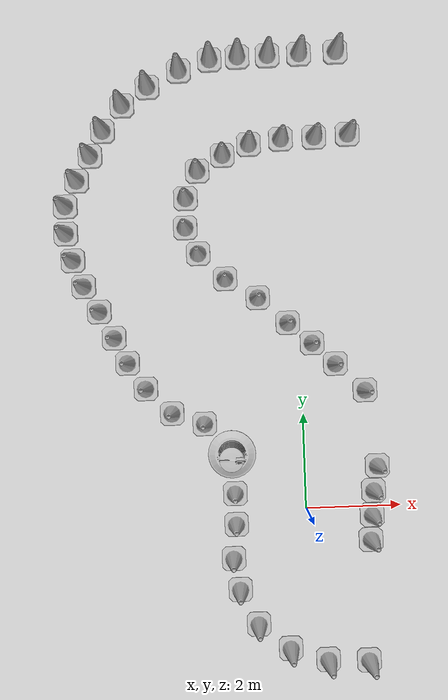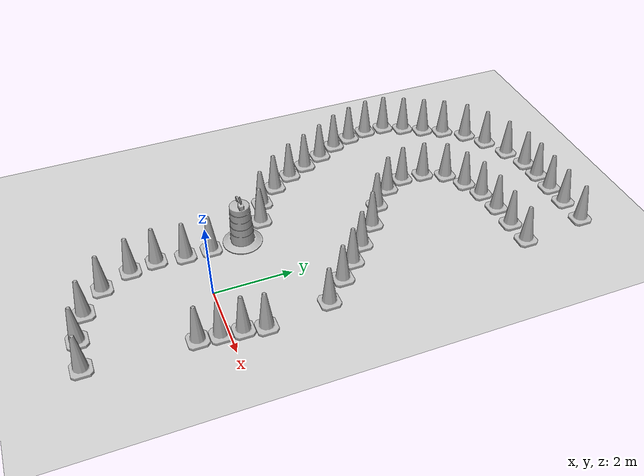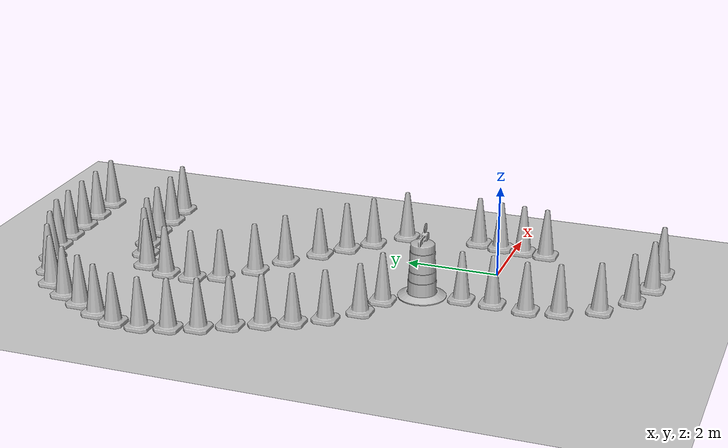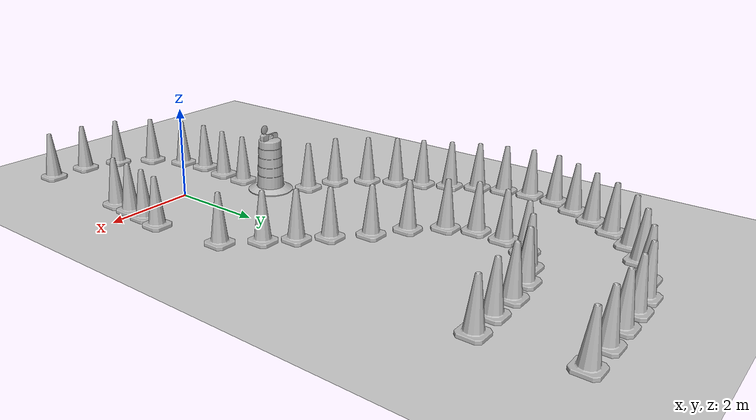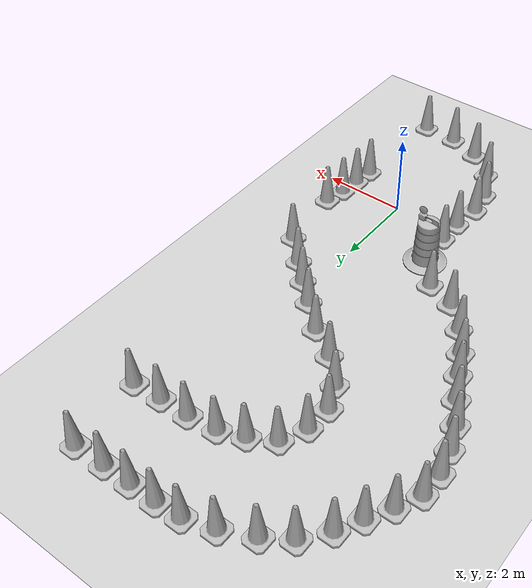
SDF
<sdf version="1.7">
 <world name="default">
  <model name="ground_plane">
   <static>1</static>
   <link name="link">
    <collision name="collision">
     <geometry><plane><normal>0 0 1</normal><size>100 100</size></plane></geometry>
     <surface><friction><ode><mu>100</mu><mu2>50</mu2></ode></friction></surface>
    </collision>
    <visual name="visual">
     <cast_shadows>0</cast_shadows>
     <geometry><plane><normal>0 0 1</normal><size>100 100</size></plane></geometry>
     <material>
      <script><uri>file://media/materials/scripts/gazebo.material</uri><name>Gazebo/Grey</name></script>
     </material>
    </visual>
   </link>
  </model>
  <model name="Construction Cone">
   <link name="link">
    <collision name="collision">
     <geometry>
      <mesh><scale>10 10 10</scale><uri>model://construction_cone/meshes/construction_cone.dae</uri></mesh>
     </geometry>
    </collision>
    <visual name="visual">
     <geometry>
      <mesh><scale>10 10 10</scale><uri>model://construction_cone/meshes/construction_cone.dae</uri></mesh>
     </geometry>
    </visual>
    <inertial>
     <inertia><ixx>1</ixx><ixy>0</ixy><ixz>0</ixz><iyy>1</iyy><iyz>0</iyz><izz>1</izz></inertia>
     <mass>1</mass>
    </inertial>
   </link>
   <pose>-1.50858 0.362206 -0 0 -1e-06 0</pose>
  </model>
  <model name="Construction Cone_0">
   <link name="link">
    <collision name="collision">
     <geometry>
      <mesh><scale>10 10 10</scale><uri>model://construction_cone/meshes/construction_cone.dae</uri></mesh>
     </geometry>
    </collision>
    <visual name="visual">
     <geometry>
      <mesh><scale>10 10 10</scale><uri>model://construction_cone/meshes/construction_cone.dae</uri></mesh>
     </geometry>
    </visual>
    <inertial>
     <inertia><ixx>1</ixx><ixy>0</ixy><ixz>0</ixz><iyy>1</iyy><iyz>0</iyz><izz>1</izz></inertia>
     <mass>1</mass>
    </inertial>
   </link>
   <pose>1.43615 0.328222 -1e-06 3e-06 -1e-06 0</pose>
  </model>
  <model name="Construction Cone_1">
   <link name="link">
    <collision name="collision">
     <geometry>
      <mesh><scale>10 10 10</scale><uri>model://construction_cone/meshes/construction_cone.dae</uri></mesh>
     </geometry>
    </collision>
    <visual name="visual">
     <geometry>
      <mesh><scale>10 10 10</scale><uri>model://construction_cone/meshes/construction_cone.dae</uri></mesh>
     </geometry>
    </visual>
    <inertial>
     <inertia><ixx>1</ixx><ixy>0</ixy><ixz>0</ixz><iyy>1</iyy><iyz>0</iyz><izz>1</izz></inertia>
     <mass>1</mass>
    </inertial>
   </link>
   <pose>-1.58642 -1.01914 -9e-06 -1e-06 -0 -0</pose>
  </model>
  <model name="Construction Cone_2">
   <link name="link">
    <collision name="collision">
     <geometry>
      <mesh><scale>10 10 10</scale><uri>model://construction_cone/meshes/construction_cone.dae</uri></mesh>
     </geometry>
    </collision>
    <visual name="visual">
     <geometry>
      <mesh><scale>10 10 10</scale><uri>model://construction_cone/meshes/construction_cone.dae</uri></mesh>
     </geometry>
    </visual>
    <inertial>
     <inertia><ixx>1</ixx><ixy>0</ixy><ixz>0</ixz><iyy>1</iyy><iyz>0</iyz><izz>1</izz></inertia>
     <mass>1</mass>
    </inertial>
   </link>
   <pose>1.34504 -0.71691 -0 0 -0 0</pose>
  </model>
  <model name="Construction Cone_3">
   <link name="link">
    <collision name="collision">
     <geometry>
      <mesh><scale>10 10 10</scale><uri>model://construction_cone/meshes/construction_cone.dae</uri></mesh>
     </geometry>
    </collision>
    <visual name="visual">
     <geometry>
      <mesh><scale>10 10 10</scale><uri>model://construction_cone/meshes/construction_cone.dae</uri></mesh>
     </geometry>
    </visual>
    <inertial>
     <inertia><ixx>1</ixx><ixy>0</ixy><ixz>0</ixz><iyy>1</iyy><iyz>0</iyz><izz>1</izz></inertia>
     <mass>1</mass>
    </inertial>
   </link>
   <pose>-1.10311 -2.43295 -3e-06 -3e-06 -1e-06 -0</pose>
  </model>
  <model name="Construction Cone_4">
   <link name="link">
    <collision name="collision">
     <geometry>
      <mesh><scale>10 10 10</scale><uri>model://construction_cone/meshes/construction_cone.dae</uri></mesh>
     </geometry>
    </collision>
    <visual name="visual">
     <geometry>
      <mesh><scale>10 10 10</scale><uri>model://construction_cone/meshes/construction_cone.dae</uri></mesh>
     </geometry>
    </visual>
    <inertial>
     <inertia><ixx>1</ixx><ixy>0</ixy><ixz>0</ixz><iyy>1</iyy><iyz>0</iyz><izz>1</izz></inertia>
     <mass>1</mass>
    </inertial>
   </link>
   <pose>0.349808 -3.23868 -6e-06 -4e-06 0 0</pose>
  </model>
  <model name="Construction Cone_8">
   <link name="link">
    <collision name="collision">
     <geometry>
      <mesh><scale>10 10 10</scale><uri>model://construction_cone/meshes/construction_cone.dae</uri></mesh>
     </geometry>
    </collision>
    <visual name="visual">
     <geometry>
      <mesh><scale>10 10 10</scale><uri>model://construction_cone/meshes/construction_cone.dae</uri></mesh>
     </geometry>
    </visual>
    <inertial>
     <inertia><ixx>1</ixx><ixy>0</ixy><ixz>0</ixz><iyy>1</iyy><iyz>0</iyz><izz>1</izz></inertia>
     <mass>1</mass>
    </inertial>
   </link>
   <pose>-0.439786 -2.97166 -0 0 -0 0</pose>
  </model>
  <model name="Construction Cone_10">
   <link name="link">
    <collision name="collision">
     <geometry>
      <mesh><scale>10 10 10</scale><uri>model://construction_cone/meshes/construction_cone.dae</uri></mesh>
     </geometry>
    </collision>
    <visual name="visual">
     <geometry>
      <mesh><scale>10 10 10</scale><uri>model://construction_cone/meshes/construction_cone.dae</uri></mesh>
     </geometry>
    </visual>
    <inertial>
     <inertia><ixx>1</ixx><ixy>0</ixy><ixz>0</ixz><iyy>1</iyy><iyz>0</iyz><izz>1</izz></inertia>
     <mass>1</mass>
    </inertial>
   </link>
   <pose>1.21753 -3.28194 -0 0 -0 0</pose>
  </model>
  <model name="Construction Cone_20">
   <link name="link">
    <collision name="collision">
     <geometry>
      <mesh><scale>10 10 10</scale><uri>model://construction_cone/meshes/construction_cone.dae</uri></mesh>
     </geometry>
    </collision>
    <visual name="visual">
     <geometry>
      <mesh><scale>10 10 10</scale><uri>model://construction_cone/meshes/construction_cone.dae</uri></mesh>
     </geometry>
    </visual>
    <inertial>
     <inertia><ixx>1</ixx><ixy>0</ixy><ixz>0</ixz><iyy>1</iyy><iyz>0</iyz><izz>1</izz></inertia>
     <mass>1</mass>
    </inertial>
   </link>
   <pose>-1.46811 -1.68302 -9e-06 -5e-06 -0 -0</pose>
  </model>
  <model name="Construction Cone_21">
   <link name="link">
    <collision name="collision">
     <geometry>
      <mesh><scale>10 10 10</scale><uri>model://construction_cone/meshes/construction_cone.dae</uri></mesh>
     </geometry>
    </collision>
    <visual name="visual">
     <geometry>
      <mesh><scale>10 10 10</scale><uri>model://construction_cone/meshes/construction_cone.dae</uri></mesh>
     </geometry>
    </visual>
    <inertial>
     <inertia><ixx>1</ixx><ixy>0</ixy><ixz>0</ixz><iyy>1</iyy><iyz>0</iyz><izz>1</izz></inertia>
     <mass>1</mass>
    </inertial>
   </link>
   <pose>-1.50445 -0.294541 -9e-06 -1e-06 -0 -0</pose>
  </model>
  <model name="Construction Cone_31">
   <link name="link">
    <collision name="collision">
     <geometry>
      <mesh><scale>10 10 10</scale><uri>model://construction_cone/meshes/construction_cone.dae</uri></mesh>
     </geometry>
    </collision>
    <visual name="visual">
     <geometry>
      <mesh><scale>10 10 10</scale><uri>model://construction_cone/meshes/construction_cone.dae</uri></mesh>
     </geometry>
    </visual>
    <inertial>
     <inertia><ixx>1</ixx><ixy>0</ixy><ixz>0</ixz><iyy>1</iyy><iyz>0</iyz><izz>1</izz></inertia>
     <mass>1</mass>
    </inertial>
   </link>
   <pose>1.38743 -0.192845 -0 0 -0 0</pose>
  </model>
  <model name="Construction Cone_32">
   <link name="link">
    <collision name="collision">
     <geometry>
      <mesh><scale>10 10 10</scale><uri>model://construction_cone/meshes/construction_cone.dae</uri></mesh>
     </geometry>
    </collision>
    <visual name="visual">
     <geometry>
      <mesh><scale>10 10 10</scale><uri>model://construction_cone/meshes/construction_cone.dae</uri></mesh>
     </geometry>
    </visual>
    <inertial>
     <inertia><ixx>1</ixx><ixy>0</ixy><ixz>0</ixz><iyy>1</iyy><iyz>0</iyz><izz>1</izz></inertia>
     <mass>1</mass>
    </inertial>
   </link>
   <pose>1.5335 0.849439 -0 0 -0 0</pose>
  </model>
  <model name="Construction Cone_54">
   <link name="link">
    <collision name="collision">
     <geometry>
      <mesh><scale>10 10 10</scale><uri>model://construction_cone/meshes/construction_cone.dae</uri></mesh>
     </geometry>
    </collision>
    <visual name="visual">
     <geometry>
      <mesh><scale>10 10 10</scale><uri>model://construction_cone/meshes/construction_cone.dae</uri></mesh>
     </geometry>
    </visual>
    <inertial>
     <inertia><ixx>1</ixx><ixy>0</ixy><ixz>0</ixz><iyy>1</iyy><iyz>0</iyz><izz>1</izz></inertia>
     <mass>1</mass>
    </inertial>
   </link>
   <pose>1.14894 7.92772 -4e-06 4e-06 -1e-06 0</pose>
  </model>
  <model name="Construction Cone_56">
   <link name="link">
    <collision name="collision">
     <geometry>
      <mesh><scale>10 10 10</scale><uri>model://construction_cone/meshes/construction_cone.dae</uri></mesh>
     </geometry>
    </collision>
    <visual name="visual">
     <geometry>
      <mesh><scale>10 10 10</scale><uri>model://construction_cone/meshes/construction_cone.dae</uri></mesh>
     </geometry>
    </visual>
    <inertial>
     <inertia><ixx>1</ixx><ixy>0</ixy><ixz>0</ixz><iyy>1</iyy><iyz>0</iyz><izz>1</izz></inertia>
     <mass>1</mass>
    </inertial>
   </link>
   <pose>0.952207 9.68972 -8e-06 1e-06 -0 0</pose>
  </model>
  <model name="Construction Cone_57">
   <link name="link">
    <collision name="collision">
     <geometry>
      <mesh><scale>10 10 10</scale><uri>model://construction_cone/meshes/construction_cone.dae</uri></mesh>
     </geometry>
    </collision>
    <visual name="visual">
     <geometry>
      <mesh><scale>10 10 10</scale><uri>model://construction_cone/meshes/construction_cone.dae</uri></mesh>
     </geometry>
    </visual>
    <inertial>
     <inertia><ixx>1</ixx><ixy>0</ixy><ixz>0</ixz><iyy>1</iyy><iyz>0</iyz><izz>1</izz></inertia>
     <mass>1</mass>
    </inertial>
   </link>
   <pose>0.175784 9.67322 -0 0 -0 0</pose>
  </model>
  <model name="Construction Cone_58">
   <link name="link">
    <collision name="collision">
     <geometry>
      <mesh><scale>10 10 10</scale><uri>model://construction_cone/meshes/construction_cone.dae</uri></mesh>
     </geometry>
    </collision>
    <visual name="visual">
     <geometry>
      <mesh><scale>10 10 10</scale><uri>model://construction_cone/meshes/construction_cone.dae</uri></mesh>
     </geometry>
    </visual>
    <inertial>
     <inertia><ixx>1</ixx><ixy>0</ixy><ixz>0</ixz><iyy>1</iyy><iyz>0</iyz><izz>1</izz></inertia>
     <mass>1</mass>
    </inertial>
   </link>
   <pose>-0.496271 9.66159 -0 0 -0 0</pose>
  </model>
  <model name="Construction Cone_59">
   <link name="link">
    <collision name="collision">
     <geometry>
      <mesh><scale>10 10 10</scale><uri>model://construction_cone/meshes/construction_cone.dae</uri></mesh>
     </geometry>
    </collision>
    <visual name="visual">
     <geometry>
      <mesh><scale>10 10 10</scale><uri>model://construction_cone/meshes/construction_cone.dae</uri></mesh>
     </geometry>
    </visual>
    <inertial>
     <inertia><ixx>1</ixx><ixy>0</ixy><ixz>0</ixz><iyy>1</iyy><iyz>0</iyz><izz>1</izz></inertia>
     <mass>1</mass>
    </inertial>
   </link>
   <pose>-1.13801 9.65365 -0 0 -0 0</pose>
  </model>
  <model name="Construction Cone_60">
   <link name="link">
    <collision name="collision">
     <geometry>
      <mesh><scale>10 10 10</scale><uri>model://construction_cone/meshes/construction_cone.dae</uri></mesh>
     </geometry>
    </collision>
    <visual name="visual">
     <geometry>
      <mesh><scale>10 10 10</scale><uri>model://construction_cone/meshes/construction_cone.dae</uri></mesh>
     </geometry>
    </visual>
    <inertial>
     <inertia><ixx>1</ixx><ixy>0</ixy><ixz>0</ixz><iyy>1</iyy><iyz>0</iyz><izz>1</izz></inertia>
     <mass>1</mass>
    </inertial>
   </link>
   <pose>-1.73081 9.61376 -0 0 -0 0</pose>
  </model>
  <model name="Construction Cone_61">
   <link name="link">
    <collision name="collision">
     <geometry>
      <mesh><scale>10 10 10</scale><uri>model://construction_cone/meshes/construction_cone.dae</uri></mesh>
     </geometry>
    </collision>
    <visual name="visual">
     <geometry>
      <mesh><scale>10 10 10</scale><uri>model://construction_cone/meshes/construction_cone.dae</uri></mesh>
     </geometry>
    </visual>
    <inertial>
     <inertia><ixx>1</ixx><ixy>0</ixy><ixz>0</ixz><iyy>1</iyy><iyz>0</iyz><izz>1</izz></inertia>
     <mass>1</mass>
    </inertial>
   </link>
   <pose>-2.39577 9.40139 -0 0 -0 0</pose>
  </model>
  <model name="Construction Cone_62">
   <link name="link">
    <collision name="collision">
     <geometry>
      <mesh><scale>10 10 10</scale><uri>model://construction_cone/meshes/construction_cone.dae</uri></mesh>
     </geometry>
    </collision>
    <visual name="visual">
     <geometry>
      <mesh><scale>10 10 10</scale><uri>model://construction_cone/meshes/construction_cone.dae</uri></mesh>
     </geometry>
    </visual>
    <inertial>
     <inertia><ixx>1</ixx><ixy>0</ixy><ixz>0</ixz><iyy>1</iyy><iyz>0</iyz><izz>1</izz></inertia>
     <mass>1</mass>
    </inertial>
   </link>
   <pose>0.434655 7.88982 -9e-06 1e-06 -1e-06 0</pose>
  </model>
  <model name="Construction Cone_63">
   <link name="link">
    <collision name="collision">
     <geometry>
      <mesh><scale>10 10 10</scale><uri>model://construction_cone/meshes/construction_cone.dae</uri></mesh>
     </geometry>
    </collision>
    <visual name="visual">
     <geometry>
      <mesh><scale>10 10 10</scale><uri>model://construction_cone/meshes/construction_cone.dae</uri></mesh>
     </geometry>
    </visual>
    <inertial>
     <inertia><ixx>1</ixx><ixy>0</ixy><ixz>0</ixz><iyy>1</iyy><iyz>0</iyz><izz>1</izz></inertia>
     <mass>1</mass>
    </inertial>
   </link>
   <pose>-0.275901 7.8748 -8e-06 -5e-06 -0 -0</pose>
  </model>
  <model name="Construction Cone_64">
   <link name="link">
    <collision name="collision">
     <geometry>
      <mesh><scale>10 10 10</scale><uri>model://construction_cone/meshes/construction_cone.dae</uri></mesh>
     </geometry>
    </collision>
    <visual name="visual">
     <geometry>
      <mesh><scale>10 10 10</scale><uri>model://construction_cone/meshes/construction_cone.dae</uri></mesh>
     </geometry>
    </visual>
    <inertial>
     <inertia><ixx>1</ixx><ixy>0</ixy><ixz>0</ixz><iyy>1</iyy><iyz>0</iyz><izz>1</izz></inertia>
     <mass>1</mass>
    </inertial>
   </link>
   <pose>-3.07727 9.07697 -6e-06 -4e-06 0 0</pose>
  </model>
  <model name="Construction Cone_65">
   <link name="link">
    <collision name="collision">
     <geometry>
      <mesh><scale>10 10 10</scale><uri>model://construction_cone/meshes/construction_cone.dae</uri></mesh>
     </geometry>
    </collision>
    <visual name="visual">
     <geometry>
      <mesh><scale>10 10 10</scale><uri>model://construction_cone/meshes/construction_cone.dae</uri></mesh>
     </geometry>
    </visual>
    <inertial>
     <inertia><ixx>1</ixx><ixy>0</ixy><ixz>0</ixz><iyy>1</iyy><iyz>0</iyz><izz>1</izz></inertia>
     <mass>1</mass>
    </inertial>
   </link>
   <pose>-3.62795 8.70409 -0 0 -0 0</pose>
  </model>
  <model name="Construction Cone_66">
   <link name="link">
    <collision name="collision">
     <geometry>
      <mesh><scale>10 10 10</scale><uri>model://construction_cone/meshes/construction_cone.dae</uri></mesh>
     </geometry>
    </collision>
    <visual name="visual">
     <geometry>
      <mesh><scale>10 10 10</scale><uri>model://construction_cone/meshes/construction_cone.dae</uri></mesh>
     </geometry>
    </visual>
    <inertial>
     <inertia><ixx>1</ixx><ixy>0</ixy><ixz>0</ixz><iyy>1</iyy><iyz>0</iyz><izz>1</izz></inertia>
     <mass>1</mass>
    </inertial>
   </link>
   <pose>-4.0584 8.17524 -0 0 -0 0</pose>
  </model>
  <model name="Construction Cone_67">
   <link name="link">
    <collision name="collision">
     <geometry>
      <mesh><scale>10 10 10</scale><uri>model://construction_cone/meshes/construction_cone.dae</uri></mesh>
     </geometry>
    </collision>
    <visual name="visual">
     <geometry>
      <mesh><scale>10 10 10</scale><uri>model://construction_cone/meshes/construction_cone.dae</uri></mesh>
     </geometry>
    </visual>
    <inertial>
     <inertia><ixx>1</ixx><ixy>0</ixy><ixz>0</ixz><iyy>1</iyy><iyz>0</iyz><izz>1</izz></inertia>
     <mass>1</mass>
    </inertial>
   </link>
   <pose>-4.34485 7.65362 -4e-06 4e-06 -1e-06 0</pose>
  </model>
  <model name="Construction Cone_68">
   <link name="link">
    <collision name="collision">
     <geometry>
      <mesh><scale>10 10 10</scale><uri>model://construction_cone/meshes/construction_cone.dae</uri></mesh>
     </geometry>
    </collision>
    <visual name="visual">
     <geometry>
      <mesh><scale>10 10 10</scale><uri>model://construction_cone/meshes/construction_cone.dae</uri></mesh>
     </geometry>
    </visual>
    <inertial>
     <inertia><ixx>1</ixx><ixy>0</ixy><ixz>0</ixz><iyy>1</iyy><iyz>0</iyz><izz>1</izz></inertia>
     <mass>1</mass>
    </inertial>
   </link>
   <pose>-4.64841 7.13597 -4e-06 4e-06 -1e-06 0</pose>
  </model>
  <model name="Construction Cone_69">
   <link name="link">
    <collision name="collision">
     <geometry>
      <mesh><scale>10 10 10</scale><uri>model://construction_cone/meshes/construction_cone.dae</uri></mesh>
     </geometry>
    </collision>
    <visual name="visual">
     <geometry>
      <mesh><scale>10 10 10</scale><uri>model://construction_cone/meshes/construction_cone.dae</uri></mesh>
     </geometry>
    </visual>
    <inertial>
     <inertia><ixx>1</ixx><ixy>0</ixy><ixz>0</ixz><iyy>1</iyy><iyz>0</iyz><izz>1</izz></inertia>
     <mass>1</mass>
    </inertial>
   </link>
   <pose>-4.91026 6.59904 -9e-06 -5e-06 -0 -0</pose>
  </model>
  <model name="Construction Cone_70">
   <link name="link">
    <collision name="collision">
     <geometry>
      <mesh><scale>10 10 10</scale><uri>model://construction_cone/meshes/construction_cone.dae</uri></mesh>
     </geometry>
    </collision>
    <visual name="visual">
     <geometry>
      <mesh><scale>10 10 10</scale><uri>model://construction_cone/meshes/construction_cone.dae</uri></mesh>
     </geometry>
    </visual>
    <inertial>
     <inertia><ixx>1</ixx><ixy>0</ixy><ixz>0</ixz><iyy>1</iyy><iyz>0</iyz><izz>1</izz></inertia>
     <mass>1</mass>
    </inertial>
   </link>
   <pose>-4.91951 6.01819 -0 0 -0 0</pose>
  </model>
  <model name="Construction Cone_71">
   <link name="link">
    <collision name="collision">
     <geometry>
      <mesh><scale>10 10 10</scale><uri>model://construction_cone/meshes/construction_cone.dae</uri></mesh>
     </geometry>
    </collision>
    <visual name="visual">
     <geometry>
      <mesh><scale>10 10 10</scale><uri>model://construction_cone/meshes/construction_cone.dae</uri></mesh>
     </geometry>
    </visual>
    <inertial>
     <inertia><ixx>1</ixx><ixy>0</ixy><ixz>0</ixz><iyy>1</iyy><iyz>0</iyz><izz>1</izz></inertia>
     <mass>1</mass>
    </inertial>
   </link>
   <pose>-4.78676 5.4447 -0 -0 -0 -0</pose>
  </model>
  <model name="Construction Cone_72">
   <link name="link">
    <collision name="collision">
     <geometry>
      <mesh><scale>10 10 10</scale><uri>model://construction_cone/meshes/construction_cone.dae</uri></mesh>
     </geometry>
    </collision>
    <visual name="visual">
     <geometry>
      <mesh><scale>10 10 10</scale><uri>model://construction_cone/meshes/construction_cone.dae</uri></mesh>
     </geometry>
    </visual>
    <inertial>
     <inertia><ixx>1</ixx><ixy>0</ixy><ixz>0</ixz><iyy>1</iyy><iyz>0</iyz><izz>1</izz></inertia>
     <mass>1</mass>
    </inertial>
   </link>
   <pose>-4.57705 4.88393 -0 0 -0 0</pose>
  </model>
  <model name="Construction Cone_73">
   <link name="link">
    <collision name="collision">
     <geometry>
      <mesh><scale>10 10 10</scale><uri>model://construction_cone/meshes/construction_cone.dae</uri></mesh>
     </geometry>
    </collision>
    <visual name="visual">
     <geometry>
      <mesh><scale>10 10 10</scale><uri>model://construction_cone/meshes/construction_cone.dae</uri></mesh>
     </geometry>
    </visual>
    <inertial>
     <inertia><ixx>1</ixx><ixy>0</ixy><ixz>0</ixz><iyy>1</iyy><iyz>0</iyz><izz>1</izz></inertia>
     <mass>1</mass>
    </inertial>
   </link>
   <pose>-4.2663 4.33406 -0 0 -0 0</pose>
  </model>
  <model name="Construction Cone_74">
   <link name="link">
    <collision name="collision">
     <geometry>
      <mesh><scale>10 10 10</scale><uri>model://construction_cone/meshes/construction_cone.dae</uri></mesh>
     </geometry>
    </collision>
    <visual name="visual">
     <geometry>
      <mesh><scale>10 10 10</scale><uri>model://construction_cone/meshes/construction_cone.dae</uri></mesh>
     </geometry>
    </visual>
    <inertial>
     <inertia><ixx>1</ixx><ixy>0</ixy><ixz>0</ixz><iyy>1</iyy><iyz>0</iyz><izz>1</izz></inertia>
     <mass>1</mass>
    </inertial>
   </link>
   <pose>-3.96986 3.76236 -6e-06 -4e-06 0 0</pose>
  </model>
  <model name="Construction Cone_75">
   <link name="link">
    <collision name="collision">
     <geometry>
      <mesh><scale>10 10 10</scale><uri>model://construction_cone/meshes/construction_cone.dae</uri></mesh>
     </geometry>
    </collision>
    <visual name="visual">
     <geometry>
      <mesh><scale>10 10 10</scale><uri>model://construction_cone/meshes/construction_cone.dae</uri></mesh>
     </geometry>
    </visual>
    <inertial>
     <inertia><ixx>1</ixx><ixy>0</ixy><ixz>0</ixz><iyy>1</iyy><iyz>0</iyz><izz>1</izz></inertia>
     <mass>1</mass>
    </inertial>
   </link>
   <pose>-3.70204 3.2174 -0 0 -0 0</pose>
  </model>
  <model name="Construction Cone_76">
   <link name="link">
    <collision name="collision">
     <geometry>
      <mesh><scale>10 10 10</scale><uri>model://construction_cone/meshes/construction_cone.dae</uri></mesh>
     </geometry>
    </collision>
    <visual name="visual">
     <geometry>
      <mesh><scale>10 10 10</scale><uri>model://construction_cone/meshes/construction_cone.dae</uri></mesh>
     </geometry>
    </visual>
    <inertial>
     <inertia><ixx>1</ixx><ixy>0</ixy><ixz>0</ixz><iyy>1</iyy><iyz>0</iyz><izz>1</izz></inertia>
     <mass>1</mass>
    </inertial>
   </link>
   <pose>-3.33309 2.65857 -6e-06 2e-06 -0 0</pose>
  </model>
  <model name="Construction Cone_78">
   <link name="link">
    <collision name="collision">
     <geometry>
      <mesh><scale>10 10 10</scale><uri>model://construction_cone/meshes/construction_cone.dae</uri></mesh>
     </geometry>
    </collision>
    <visual name="visual">
     <geometry>
      <mesh><scale>10 10 10</scale><uri>model://construction_cone/meshes/construction_cone.dae</uri></mesh>
     </geometry>
    </visual>
    <inertial>
     <inertia><ixx>1</ixx><ixy>0</ixy><ixz>0</ixz><iyy>1</iyy><iyz>0</iyz><izz>1</izz></inertia>
     <mass>1</mass>
    </inertial>
   </link>
   <pose>-0.9604 7.78693 -9e-06 -1e-06 -0 -0</pose>
  </model>
  <model name="Construction Cone_79">
   <link name="link">
    <collision name="collision">
     <geometry>
      <mesh><scale>10 10 10</scale><uri>model://construction_cone/meshes/construction_cone.dae</uri></mesh>
     </geometry>
    </collision>
    <visual name="visual">
     <geometry>
      <mesh><scale>10 10 10</scale><uri>model://construction_cone/meshes/construction_cone.dae</uri></mesh>
     </geometry>
    </visual>
    <inertial>
     <inertia><ixx>1</ixx><ixy>0</ixy><ixz>0</ixz><iyy>1</iyy><iyz>0</iyz><izz>1</izz></inertia>
     <mass>1</mass>
    </inertial>
   </link>
   <pose>1.32951 2.46996 -6e-06 2e-06 -0 0</pose>
  </model>
  <model name="Construction Cone_80">
   <link name="link">
    <collision name="collision">
     <geometry>
      <mesh><scale>10 10 10</scale><uri>model://construction_cone/meshes/construction_cone.dae</uri></mesh>
     </geometry>
    </collision>
    <visual name="visual">
     <geometry>
      <mesh><scale>10 10 10</scale><uri>model://construction_cone/meshes/construction_cone.dae</uri></mesh>
     </geometry>
    </visual>
    <inertial>
     <inertia><ixx>1</ixx><ixy>0</ixy><ixz>0</ixz><iyy>1</iyy><iyz>0</iyz><izz>1</izz></inertia>
     <mass>1</mass>
    </inertial>
   </link>
   <pose>0.718845 3.05434 -0 0 -1e-06 0</pose>
  </model>
  <model name="Construction Cone_81">
   <link name="link">
    <collision name="collision">
     <geometry>
      <mesh><scale>10 10 10</scale><uri>model://construction_cone/meshes/construction_cone.dae</uri></mesh>
     </geometry>
    </collision>
    <visual name="visual">
     <geometry>
      <mesh><scale>10 10 10</scale><uri>model://construction_cone/meshes/construction_cone.dae</uri></mesh>
     </geometry>
    </visual>
    <inertial>
     <inertia><ixx>1</ixx><ixy>0</ixy><ixz>0</ixz><iyy>1</iyy><iyz>0</iyz><izz>1</izz></inertia>
     <mass>1</mass>
    </inertial>
   </link>
   <pose>0.240598 3.5117 -0 0 -0 0</pose>
  </model>
  <model name="Construction Cone_82">
   <link name="link">
    <collision name="collision">
     <geometry>
      <mesh><scale>10 10 10</scale><uri>model://construction_cone/meshes/construction_cone.dae</uri></mesh>
     </geometry>
    </collision>
    <visual name="visual">
     <geometry>
      <mesh><scale>10 10 10</scale><uri>model://construction_cone/meshes/construction_cone.dae</uri></mesh>
     </geometry>
    </visual>
    <inertial>
     <inertia><ixx>1</ixx><ixy>0</ixy><ixz>0</ixz><iyy>1</iyy><iyz>0</iyz><izz>1</izz></inertia>
     <mass>1</mass>
    </inertial>
   </link>
   <pose>-0.262946 3.96025 -0 0 -0 0</pose>
  </model>
  <model name="Construction Cone_77">
   <link name="link">
    <collision name="collision">
     <geometry>
      <mesh><scale>10 10 10</scale><uri>model://construction_cone/meshes/construction_cone.dae</uri></mesh>
     </geometry>
    </collision>
    <visual name="visual">
     <geometry>
      <mesh><scale>10 10 10</scale><uri>model://construction_cone/meshes/construction_cone.dae</uri></mesh>
     </geometry>
    </visual>
    <inertial>
     <inertia><ixx>1</ixx><ixy>0</ixy><ixz>0</ixz><iyy>1</iyy><iyz>0</iyz><izz>1</izz></inertia>
     <mass>1</mass>
    </inertial>
   </link>
   <pose>-2.79181 2.11434 0 -0 -0 -0</pose>
  </model>
  <model name="Construction Barrel">
   <link name="link">
    <inertial>
     <pose>0 0 0.4 0 -0 0</pose>
     <mass>500</mass>
     <inertia><ixx>51.2096</ixx><iyy>51.2096</iyy><izz>25</izz><ixy>0</ixy><ixz>0</ixz><iyz>0</iyz></inertia>
    </inertial>
    <collision name="collision">
     <geometry><mesh><uri>model://construction_barrel/meshes/construction_barrel.dae</uri></mesh></geometry>
    </collision>
    <visual name="visual">
     <geometry><mesh><uri>model://construction_barrel/meshes/construction_barrel.dae</uri></mesh></geometry>
    </visual>
   </link>
   <pose>-1.54892 1.20006 -1e-06 1e-06 -9e-06 -2.7e-05</pose>
  </model>
  <model name="Construction Cone_83">
   <link name="link">
    <collision name="collision">
     <geometry>
      <mesh><scale>10 10 10</scale><uri>model://construction_cone/meshes/construction_cone.dae</uri></mesh>
     </geometry>
    </collision>
    <visual name="visual">
     <geometry>
      <mesh><scale>10 10 10</scale><uri>model://construction_cone/meshes/construction_cone.dae</uri></mesh>
     </geometry>
    </visual>
    <inertial>
     <inertia><ixx>1</ixx><ixy>0</ixy><ixz>0</ixz><iyy>1</iyy><iyz>0</iyz><izz>1</izz></inertia>
     <mass>1</mass>
    </inertial>
   </link>
   <pose>-2.10738 1.86915 -0 0 -0 0</pose>
  </model>
  <model name="Construction Cone_84">
   <link name="link">
    <collision name="collision">
     <geometry>
      <mesh><scale>10 10 10</scale><uri>model://construction_cone/meshes/construction_cone.dae</uri></mesh>
     </geometry>
    </collision>
    <visual name="visual">
     <geometry>
      <mesh><scale>10 10 10</scale><uri>model://construction_cone/meshes/construction_cone.dae</uri></mesh>
     </geometry>
    </visual>
    <inertial>
     <inertia><ixx>1</ixx><ixy>0</ixy><ixz>0</ixz><iyy>1</iyy><iyz>0</iyz><izz>1</izz></inertia>
     <mass>1</mass>
    </inertial>
   </link>
   <pose>-0.882947 4.51478 -6e-06 -4e-06 1e-06 0</pose>
  </model>
  <model name="Construction Cone_85">
   <link name="link">
    <collision name="collision">
     <geometry>
      <mesh><scale>10 10 10</scale><uri>model://construction_cone/meshes/construction_cone.dae</uri></mesh>
     </geometry>
    </collision>
    <visual name="visual">
     <geometry>
      <mesh><scale>10 10 10</scale><uri>model://construction_cone/meshes/construction_cone.dae</uri></mesh>
     </geometry>
    </visual>
    <inertial>
     <inertia><ixx>1</ixx><ixy>0</ixy><ixz>0</ixz><iyy>1</iyy><iyz>0</iyz><izz>1</izz></inertia>
     <mass>1</mass>
    </inertial>
   </link>
   <pose>-1.52717 7.57291 -0 0 -0 0</pose>
  </model>
  <model name="Construction Cone_86">
   <link name="link">
    <collision name="collision">
     <geometry>
      <mesh><scale>10 10 10</scale><uri>model://construction_cone/meshes/construction_cone.dae</uri></mesh>
     </geometry>
    </collision>
    <visual name="visual">
     <geometry>
      <mesh><scale>10 10 10</scale><uri>model://construction_cone/meshes/construction_cone.dae</uri></mesh>
     </geometry>
    </visual>
    <inertial>
     <inertia><ixx>1</ixx><ixy>0</ixy><ixz>0</ixz><iyy>1</iyy><iyz>0</iyz><izz>1</izz></inertia>
     <mass>1</mass>
    </inertial>
   </link>
   <pose>-2.07448 7.25622 -0 -0 -0 -0</pose>
  </model>
  <model name="Construction Cone_87">
   <link name="link">
    <collision name="collision">
     <geometry>
      <mesh><scale>10 10 10</scale><uri>model://construction_cone/meshes/construction_cone.dae</uri></mesh>
     </geometry>
    </collision>
    <visual name="visual">
     <geometry>
      <mesh><scale>10 10 10</scale><uri>model://construction_cone/meshes/construction_cone.dae</uri></mesh>
     </geometry>
    </visual>
    <inertial>
     <inertia><ixx>1</ixx><ixy>0</ixy><ixz>0</ixz><iyy>1</iyy><iyz>0</iyz><izz>1</izz></inertia>
     <mass>1</mass>
    </inertial>
   </link>
   <pose>-2.34241 6.68171 -1e-05 -1e-06 0 0</pose>
  </model>
  <model name="Construction Cone_88">
   <link name="link">
    <collision name="collision">
     <geometry>
      <mesh><scale>10 10 10</scale><uri>model://construction_cone/meshes/construction_cone.dae</uri></mesh>
     </geometry>
    </collision>
    <visual name="visual">
     <geometry>
      <mesh><scale>10 10 10</scale><uri>model://construction_cone/meshes/construction_cone.dae</uri></mesh>
     </geometry>
    </visual>
    <inertial>
     <inertia><ixx>1</ixx><ixy>0</ixy><ixz>0</ixz><iyy>1</iyy><iyz>0</iyz><izz>1</izz></inertia>
     <mass>1</mass>
    </inertial>
   </link>
   <pose>-2.37159 6.05694 0 -0 -0 -0</pose>
  </model>
  <model name="Construction Cone_89">
   <link name="link">
    <collision name="collision">
     <geometry>
      <mesh><scale>10 10 10</scale><uri>model://construction_cone/meshes/construction_cone.dae</uri></mesh>
     </geometry>
    </collision>
    <visual name="visual">
     <geometry>
      <mesh><scale>10 10 10</scale><uri>model://construction_cone/meshes/construction_cone.dae</uri></mesh>
     </geometry>
    </visual>
    <inertial>
     <inertia><ixx>1</ixx><ixy>0</ixy><ixz>0</ixz><iyy>1</iyy><iyz>0</iyz><izz>1</izz></inertia>
     <mass>1</mass>
    </inertial>
   </link>
   <pose>-2.11552 5.49839 -0 0 -0 0</pose>
  </model>
  <model name="Construction Cone_90">
   <link name="link">
    <collision name="collision">
     <geometry>
      <mesh><scale>10 10 10</scale><uri>model://construction_cone/meshes/construction_cone.dae</uri></mesh>
     </geometry>
    </collision>
    <visual name="visual">
     <geometry>
      <mesh><scale>10 10 10</scale><uri>model://construction_cone/meshes/construction_cone.dae</uri></mesh>
     </geometry>
    </visual>
    <inertial>
     <inertia><ixx>1</ixx><ixy>0</ixy><ixz>0</ixz><iyy>1</iyy><iyz>0</iyz><izz>1</izz></inertia>
     <mass>1</mass>
    </inertial>
   </link>
   <pose>-1.56213 4.9433 -0 0 -0 0</pose>
  </model>
 </world>
</sdf>
